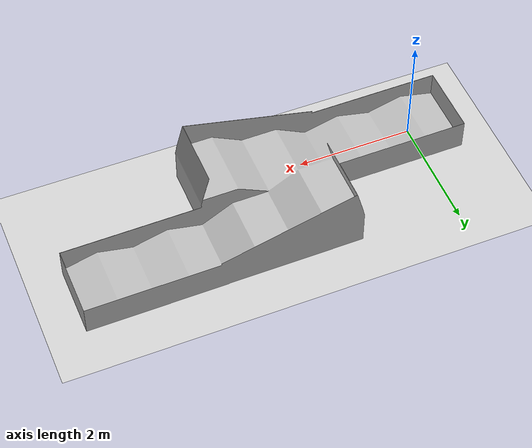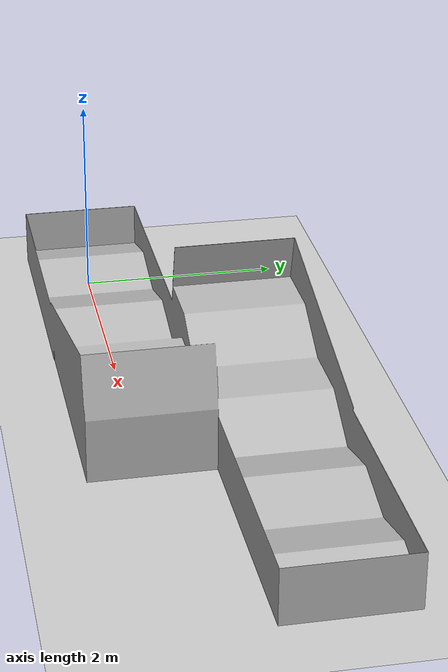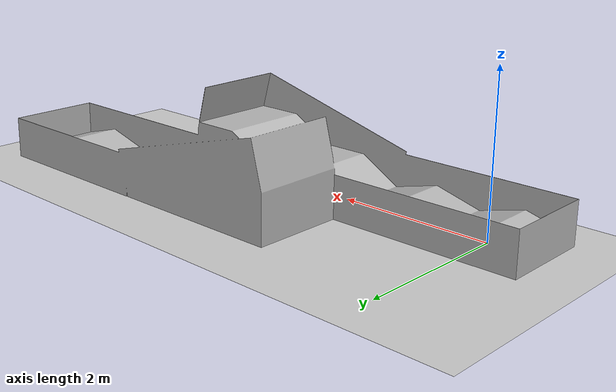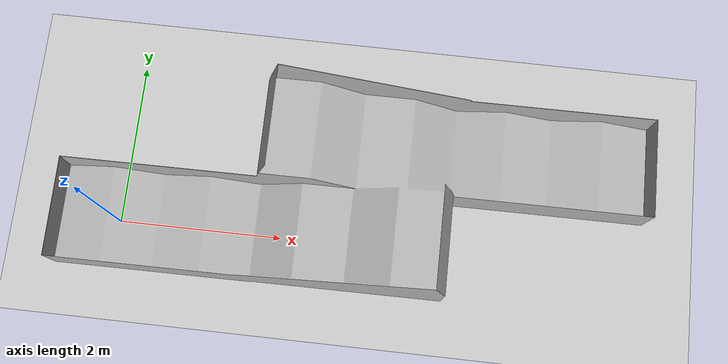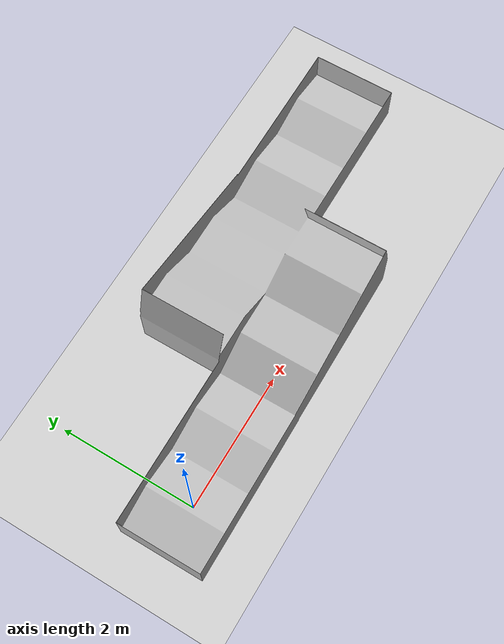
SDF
<sdf version="1.7">
 <world name="sample">
  <model name="ground_plane">
   <static>1</static>
   <link name="link">
    <collision name="collision">
     <geometry><plane><normal>0 0 1</normal><size>100 100</size></plane></geometry>
     <surface>
      <contact><collide_bitmask>65535</collide_bitmask></contact>
      <friction><ode><mu>100</mu><mu2>50</mu2></ode></friction>
     </surface>
    </collision>
    <visual name="visual">
     <cast_shadows>0</cast_shadows>
     <geometry><plane><normal>0 0 1</normal><size>100 100</size></plane></geometry>
     <material>
      <script><uri>file://media/materials/scripts/gazebo.material</uri><name>Gazebo/Grey</name></script>
     </material>
    </visual>
   </link>
  </model>
  <model name="continuous_ramp_slope">
   <static>1</static>
   <pose>-0.717362 -0.598954 1e-06 1.5708 -4e-06 -3.13573</pose>
   <link name="link">
    <collision name="collision">
     <geometry>
      <mesh><scale>0.01 0.01 0.01</scale><uri>model://continuous_ramp_slope/continuous_ramp_slope.dae</uri></mesh>
     </geometry>
     <surface><friction><ode><mu>100</mu><mu2>50</mu2></ode></friction></surface>
    </collision>
    <visual name="visual">
     <geometry>
      <mesh><scale>0.01 0.01 0.01</scale><uri>model://continuous_ramp_slope/continuous_ramp_slope.dae</uri></mesh>
     </geometry>
    </visual>
   </link>
  </model>
 </world>
</sdf>
